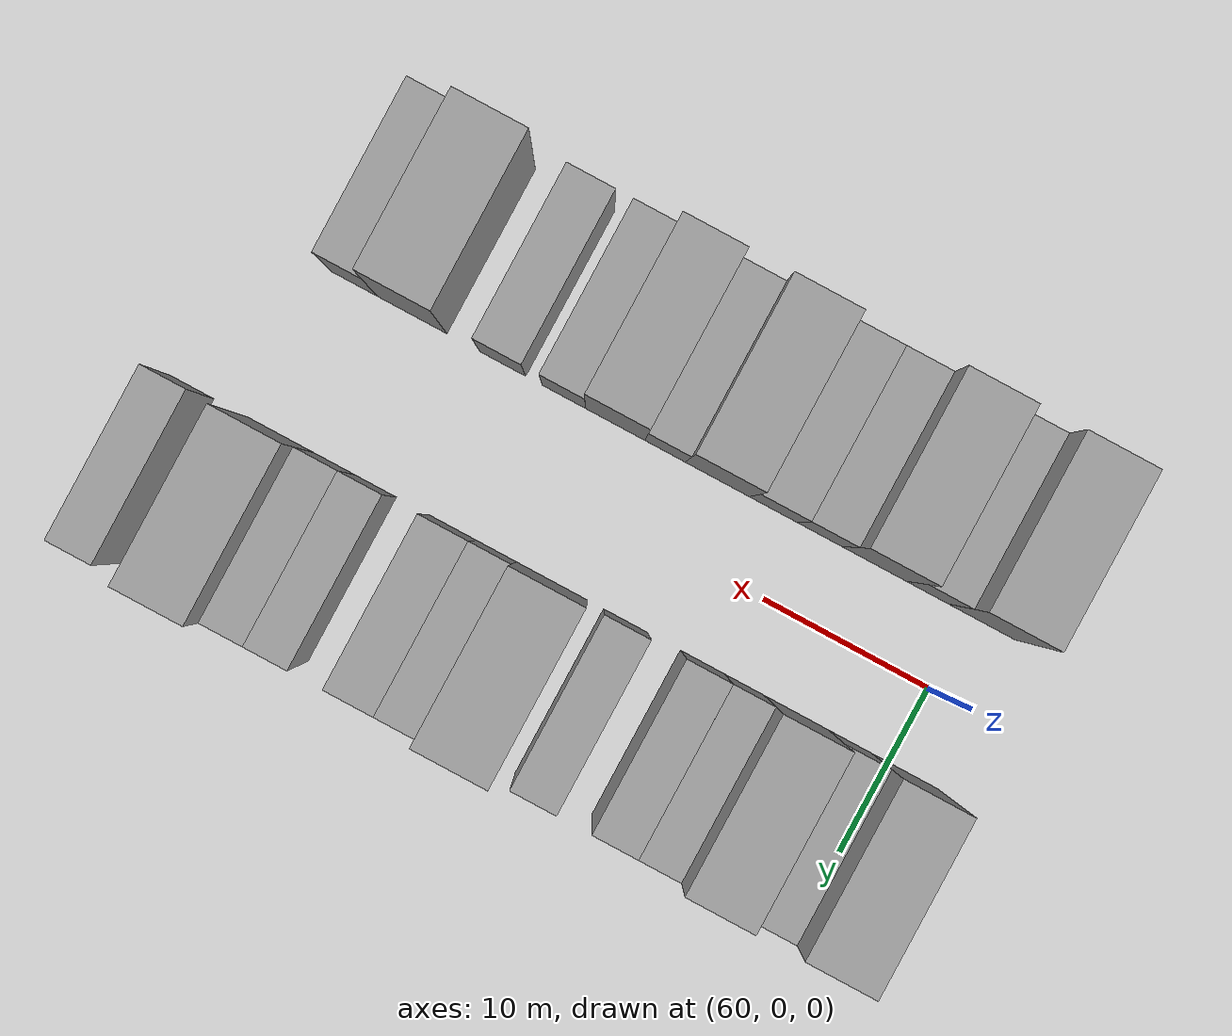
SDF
<sdf version="1.6">
 <world name="default">
  <model name="building_12">
   <static>1</static>
   <pose>59.0237 9.5000 0 0.000000 0.000000 1.570796</pose>
   <link name="link">
    <pose>0 0 4.50 0 0 0</pose>
    <collision name="collision"><geometry><box><size>10.0000 4.0014 9.0000</size></box></geometry></collision>
    <visual name="visual">
     <cast_shadows>0</cast_shadows>
     <geometry><box><size>10.0000 4.0014 9.0000</size></box></geometry>
     <material>
      <script>
       <uri>model://grey_wall/materials/scripts</uri>
       <uri>model://grey_wall/materials/textures</uri>
       <name>vrc/grey_wall</name>
      </script>
     </material>
    </visual>
   </link>
  </model>
  <model name="building_13">
   <static>1</static>
   <pose>62.3560 9.5000 0 0.000000 0.000000 1.570796</pose>
   <link name="link">
    <pose>0 0 3.00 0 0 0</pose>
    <collision name="collision"><geometry><box><size>10.0000 2.6633 6.0000</size></box></geometry></collision>
    <visual name="visual">
     <cast_shadows>0</cast_shadows>
     <geometry><box><size>10.0000 2.6633 6.0000</size></box></geometry>
     <material>
      <script>
       <uri>model://grey_wall/materials/scripts</uri>
       <uri>model://grey_wall/materials/textures</uri>
       <name>vrc/grey_wall</name>
      </script>
     </material>
    </visual>
   </link>
  </model>
  <model name="building_14">
   <static>1</static>
   <pose>65.6383 9.5000 0 0.000000 0.000000 1.570796</pose>
   <link name="link">
    <pose>0 0 4.50 0 0 0</pose>
    <collision name="collision"><geometry><box><size>10.0000 3.9012 9.0000</size></box></geometry></collision>
    <visual name="visual">
     <cast_shadows>0</cast_shadows>
     <geometry><box><size>10.0000 3.9012 9.0000</size></box></geometry>
     <material>
      <script>
       <uri>model://grey_wall/materials/scripts</uri>
       <uri>model://grey_wall/materials/textures</uri>
       <name>vrc/grey_wall</name>
      </script>
     </material>
    </visual>
   </link>
  </model>
  <model name="building_15">
   <static>1</static>
   <pose>68.8008 9.5000 0 0.000000 0.000000 1.570796</pose>
   <link name="link">
    <pose>0 0 3.00 0 0 0</pose>
    <collision name="collision"><geometry><box><size>10.0000 2.4239 6.0000</size></box></geometry></collision>
    <visual name="visual">
     <cast_shadows>0</cast_shadows>
     <geometry><box><size>10.0000 2.4239 6.0000</size></box></geometry>
     <material>
      <script>
       <uri>model://grey_wall/materials/scripts</uri>
       <uri>model://grey_wall/materials/textures</uri>
       <name>vrc/grey_wall</name>
      </script>
     </material>
    </visual>
   </link>
  </model>
  <model name="building_16">
   <static>1</static>
   <pose>71.3409 9.5000 0 0.000000 0.000000 1.570796</pose>
   <link name="link">
    <pose>0 0 3.00 0 0 0</pose>
    <collision name="collision"><geometry><box><size>10.0000 2.6561 6.0000</size></box></geometry></collision>
    <visual name="visual">
     <cast_shadows>0</cast_shadows>
     <geometry><box><size>10.0000 2.6561 6.0000</size></box></geometry>
     <material>
      <script>
       <uri>model://grey_wall/materials/scripts</uri>
       <uri>model://grey_wall/materials/textures</uri>
       <name>vrc/grey_wall</name>
      </script>
     </material>
    </visual>
   </link>
  </model>
  <model name="building_17">
   <static>1</static>
   <pose>76.0085 9.5000 0 0.000000 0.000000 1.570796</pose>
   <link name="link">
    <pose>0 0 3.00 0 0 0</pose>
    <collision name="collision"><geometry><box><size>10.0000 2.6791 6.0000</size></box></geometry></collision>
    <visual name="visual">
     <cast_shadows>0</cast_shadows>
     <geometry><box><size>10.0000 2.6791 6.0000</size></box></geometry>
     <material>
      <script>
       <uri>model://grey_wall/materials/scripts</uri>
       <uri>model://grey_wall/materials/textures</uri>
       <name>vrc/grey_wall</name>
      </script>
     </material>
    </visual>
   </link>
  </model>
  <model name="building_18">
   <static>1</static>
   <pose>80.4945 9.5000 0 0.000000 0.000000 1.570796</pose>
   <link name="link">
    <pose>0 0 4.50 0 0 0</pose>
    <collision name="collision"><geometry><box><size>10.0000 4.2929 9.0000</size></box></geometry></collision>
    <visual name="visual">
     <cast_shadows>0</cast_shadows>
     <geometry><box><size>10.0000 4.2929 9.0000</size></box></geometry>
     <material>
      <script>
       <uri>model://grey_wall/materials/scripts</uri>
       <uri>model://grey_wall/materials/textures</uri>
       <name>vrc/grey_wall</name>
      </script>
     </material>
    </visual>
   </link>
  </model>
  <model name="building_19">
   <static>1</static>
   <pose>83.8605 9.5000 0 0.000000 0.000000 1.570796</pose>
   <link name="link">
    <pose>0 0 3.00 0 0 0</pose>
    <collision name="collision"><geometry><box><size>10.0000 2.4390 6.0000</size></box></geometry></collision>
    <visual name="visual">
     <cast_shadows>0</cast_shadows>
     <geometry><box><size>10.0000 2.4390 6.0000</size></box></geometry>
     <material>
      <script>
       <uri>model://grey_wall/materials/scripts</uri>
       <uri>model://grey_wall/materials/textures</uri>
       <name>vrc/grey_wall</name>
      </script>
     </material>
    </visual>
   </link>
  </model>
  <model name="building_20">
   <static>1</static>
   <pose>86.5218 9.5000 0 0.000000 0.000000 1.570796</pose>
   <link name="link">
    <pose>0 0 3.00 0 0 0</pose>
    <collision name="collision"><geometry><box><size>10.0000 2.8836 6.0000</size></box></geometry></collision>
    <visual name="visual">
     <cast_shadows>0</cast_shadows>
     <geometry><box><size>10.0000 2.8836 6.0000</size></box></geometry>
     <material>
      <script>
       <uri>model://grey_wall/materials/scripts</uri>
       <uri>model://grey_wall/materials/textures</uri>
       <name>vrc/grey_wall</name>
      </script>
     </material>
    </visual>
   </link>
  </model>
  <model name="building_21">
   <static>1</static>
   <pose>91.2309 9.5000 0 0.000000 0.000000 1.570796</pose>
   <link name="link">
    <pose>0 0 3.00 0 0 0</pose>
    <collision name="collision"><geometry><box><size>10.0000 2.5348 6.0000</size></box></geometry></collision>
    <visual name="visual">
     <cast_shadows>0</cast_shadows>
     <geometry><box><size>10.0000 2.5348 6.0000</size></box></geometry>
     <material>
      <script>
       <uri>model://grey_wall/materials/scripts</uri>
       <uri>model://grey_wall/materials/textures</uri>
       <name>vrc/grey_wall</name>
      </script>
     </material>
    </visual>
   </link>
  </model>
  <model name="building_22">
   <static>1</static>
   <pose>93.7545 9.5000 0 0.000000 0.000000 1.570796</pose>
   <link name="link">
    <pose>0 0 3.00 0 0 0</pose>
    <collision name="collision"><geometry><box><size>10.0000 2.5124 6.0000</size></box></geometry></collision>
    <visual name="visual">
     <cast_shadows>0</cast_shadows>
     <geometry><box><size>10.0000 2.5124 6.0000</size></box></geometry>
     <material>
      <script>
       <uri>model://grey_wall/materials/scripts</uri>
       <uri>model://grey_wall/materials/textures</uri>
       <name>vrc/grey_wall</name>
      </script>
     </material>
    </visual>
   </link>
  </model>
  <model name="building_23">
   <static>1</static>
   <pose>97.0483 9.5000 0 0.000000 0.000000 1.570796</pose>
   <link name="link">
    <pose>0 0 4.50 0 0 0</pose>
    <collision name="collision"><geometry><box><size>10.0000 4.0752 9.0000</size></box></geometry></collision>
    <visual name="visual">
     <cast_shadows>0</cast_shadows>
     <geometry><box><size>10.0000 4.0752 9.0000</size></box></geometry>
     <material>
      <script>
       <uri>model://grey_wall/materials/scripts</uri>
       <uri>model://grey_wall/materials/textures</uri>
       <name>vrc/grey_wall</name>
      </script>
     </material>
    </visual>
   </link>
  </model>
  <model name="building_24">
   <static>1</static>
   <pose>102.4143 9.5000 0 0.000000 0.000000 1.570796</pose>
   <link name="link">
    <pose>0 0 3.00 0 0 0</pose>
    <collision name="collision"><geometry><box><size>10.0000 2.6569 6.0000</size></box></geometry></collision>
    <visual name="visual">
     <cast_shadows>0</cast_shadows>
     <geometry><box><size>10.0000 2.6569 6.0000</size></box></geometry>
     <material>
      <script>
       <uri>model://grey_wall/materials/scripts</uri>
       <uri>model://grey_wall/materials/textures</uri>
       <name>vrc/grey_wall</name>
      </script>
     </material>
    </visual>
   </link>
  </model>
  <model name="building_62">
   <static>1</static>
   <pose>59.1581 -9.5000 0 0.000000 0.000000 1.570796</pose>
   <link name="link">
    <pose>0 0 4.50 0 0 0</pose>
    <collision name="collision"><geometry><box><size>10.0000 4.0737 9.0000</size></box></geometry></collision>
    <visual name="visual">
     <cast_shadows>0</cast_shadows>
     <geometry><box><size>10.0000 4.0737 9.0000</size></box></geometry>
     <material>
      <script>
       <uri>model://grey_wall/materials/scripts</uri>
       <uri>model://grey_wall/materials/textures</uri>
       <name>vrc/grey_wall</name>
      </script>
     </material>
    </visual>
   </link>
  </model>
  <model name="building_63">
   <static>1</static>
   <pose>62.4894 -9.5000 0 0.000000 0.000000 1.570796</pose>
   <link name="link">
    <pose>0 0 3.00 0 0 0</pose>
    <collision name="collision"><geometry><box><size>10.0000 2.5890 6.0000</size></box></geometry></collision>
    <visual name="visual">
     <cast_shadows>0</cast_shadows>
     <geometry><box><size>10.0000 2.5890 6.0000</size></box></geometry>
     <material>
      <script>
       <uri>model://grey_wall/materials/scripts</uri>
       <uri>model://grey_wall/materials/textures</uri>
       <name>vrc/grey_wall</name>
      </script>
     </material>
    </visual>
   </link>
  </model>
  <model name="building_64">
   <static>1</static>
   <pose>65.7362 -9.5000 0 0.000000 0.000000 1.570796</pose>
   <link name="link">
    <pose>0 0 4.50 0 0 0</pose>
    <collision name="collision"><geometry><box><size>10.0000 3.9047 9.0000</size></box></geometry></collision>
    <visual name="visual">
     <cast_shadows>0</cast_shadows>
     <geometry><box><size>10.0000 3.9047 9.0000</size></box></geometry>
     <material>
      <script>
       <uri>model://grey_wall/materials/scripts</uri>
       <uri>model://grey_wall/materials/textures</uri>
       <name>vrc/grey_wall</name>
      </script>
     </material>
    </visual>
   </link>
  </model>
  <model name="building_65">
   <static>1</static>
   <pose>69.0563 -9.5000 0 0.000000 0.000000 1.570796</pose>
   <link name="link">
    <pose>0 0 3.00 0 0 0</pose>
    <collision name="collision"><geometry><box><size>10.0000 2.7354 6.0000</size></box></geometry></collision>
    <visual name="visual">
     <cast_shadows>0</cast_shadows>
     <geometry><box><size>10.0000 2.7354 6.0000</size></box></geometry>
     <material>
      <script>
       <uri>model://grey_wall/materials/scripts</uri>
       <uri>model://grey_wall/materials/textures</uri>
       <name>vrc/grey_wall</name>
      </script>
     </material>
    </visual>
   </link>
  </model>
  <model name="building_66">
   <static>1</static>
   <pose>71.8735 -9.5000 0 0.000000 0.000000 1.570796</pose>
   <link name="link">
    <pose>0 0 3.00 0 0 0</pose>
    <collision name="collision"><geometry><box><size>10.0000 2.8991 6.0000</size></box></geometry></collision>
    <visual name="visual">
     <cast_shadows>0</cast_shadows>
     <geometry><box><size>10.0000 2.8991 6.0000</size></box></geometry>
     <material>
      <script>
       <uri>model://grey_wall/materials/scripts</uri>
       <uri>model://grey_wall/materials/textures</uri>
       <name>vrc/grey_wall</name>
      </script>
     </material>
    </visual>
   </link>
  </model>
  <model name="building_67">
   <static>1</static>
   <pose>75.2714 -9.5000 0 0.000000 0.000000 1.570796</pose>
   <link name="link">
    <pose>0 0 4.50 0 0 0</pose>
    <collision name="collision"><geometry><box><size>10.0000 3.8966 9.0000</size></box></geometry></collision>
    <visual name="visual">
     <cast_shadows>0</cast_shadows>
     <geometry><box><size>10.0000 3.8966 9.0000</size></box></geometry>
     <material>
      <script>
       <uri>model://grey_wall/materials/scripts</uri>
       <uri>model://grey_wall/materials/textures</uri>
       <name>vrc/grey_wall</name>
      </script>
     </material>
    </visual>
   </link>
  </model>
  <model name="building_68">
   <static>1</static>
   <pose>78.4547 -9.5000 0 0.000000 0.000000 1.570796</pose>
   <link name="link">
    <pose>0 0 3.00 0 0 0</pose>
    <collision name="collision"><geometry><box><size>10.0000 2.4700 6.0000</size></box></geometry></collision>
    <visual name="visual">
     <cast_shadows>0</cast_shadows>
     <geometry><box><size>10.0000 2.4700 6.0000</size></box></geometry>
     <material>
      <script>
       <uri>model://grey_wall/materials/scripts</uri>
       <uri>model://grey_wall/materials/textures</uri>
       <name>vrc/grey_wall</name>
      </script>
     </material>
    </visual>
   </link>
  </model>
  <model name="building_69">
   <static>1</static>
   <pose>81.5020 -9.5000 0 0.000000 0.000000 1.570796</pose>
   <link name="link">
    <pose>0 0 4.50 0 0 0</pose>
    <collision name="collision"><geometry><box><size>10.0000 3.6245 9.0000</size></box></geometry></collision>
    <visual name="visual">
     <cast_shadows>0</cast_shadows>
     <geometry><box><size>10.0000 3.6245 9.0000</size></box></geometry>
     <material>
      <script>
       <uri>model://grey_wall/materials/scripts</uri>
       <uri>model://grey_wall/materials/textures</uri>
       <name>vrc/grey_wall</name>
      </script>
     </material>
    </visual>
   </link>
  </model>
  <model name="building_70">
   <static>1</static>
   <pose>84.6232 -9.5000 0 0.000000 0.000000 1.570796</pose>
   <link name="link">
    <pose>0 0 3.00 0 0 0</pose>
    <collision name="collision"><geometry><box><size>10.0000 2.6178 6.0000</size></box></geometry></collision>
    <visual name="visual">
     <cast_shadows>0</cast_shadows>
     <geometry><box><size>10.0000 2.6178 6.0000</size></box></geometry>
     <material>
      <script>
       <uri>model://grey_wall/materials/scripts</uri>
       <uri>model://grey_wall/materials/textures</uri>
       <name>vrc/grey_wall</name>
      </script>
     </material>
    </visual>
   </link>
  </model>
  <model name="building_71">
   <static>1</static>
   <pose>88.3349 -9.5000 0 0.000000 0.000000 1.570796</pose>
   <link name="link">
    <pose>0 0 3.00 0 0 0</pose>
    <collision name="collision"><geometry><box><size>10.0000 2.8058 6.0000</size></box></geometry></collision>
    <visual name="visual">
     <cast_shadows>0</cast_shadows>
     <geometry><box><size>10.0000 2.8058 6.0000</size></box></geometry>
     <material>
      <script>
       <uri>model://grey_wall/materials/scripts</uri>
       <uri>model://grey_wall/materials/textures</uri>
       <name>vrc/grey_wall</name>
      </script>
     </material>
    </visual>
   </link>
  </model>
  <model name="building_72">
   <static>1</static>
   <pose>93.8609 -9.5000 0 0.000000 0.000000 1.570796</pose>
   <link name="link">
    <pose>0 0 4.50 0 0 0</pose>
    <collision name="collision"><geometry><box><size>10.0000 4.2462 9.0000</size></box></geometry></collision>
    <visual name="visual">
     <cast_shadows>0</cast_shadows>
     <geometry><box><size>10.0000 4.2462 9.0000</size></box></geometry>
     <material>
      <script>
       <uri>model://grey_wall/materials/scripts</uri>
       <uri>model://grey_wall/materials/textures</uri>
       <name>vrc/grey_wall</name>
      </script>
     </material>
    </visual>
   </link>
  </model>
  <model name="building_73">
   <static>1</static>
   <pose>97.4009 -9.5000 0 0.000000 0.000000 1.570796</pose>
   <link name="link">
    <pose>0 0 3.00 0 0 0</pose>
    <collision name="collision"><geometry><box><size>10.0000 2.8338 6.0000</size></box></geometry></collision>
    <visual name="visual">
     <cast_shadows>0</cast_shadows>
     <geometry><box><size>10.0000 2.8338 6.0000</size></box></geometry>
     <material>
      <script>
       <uri>model://grey_wall/materials/scripts</uri>
       <uri>model://grey_wall/materials/textures</uri>
       <name>vrc/grey_wall</name>
      </script>
     </material>
    </visual>
   </link>
  </model>
 </world>
</sdf>
